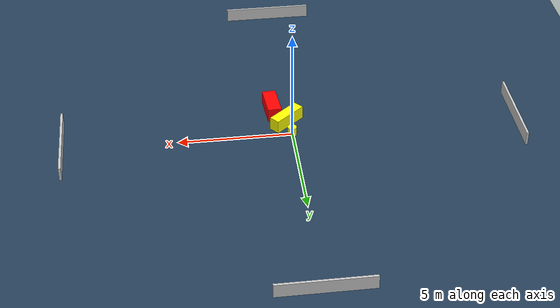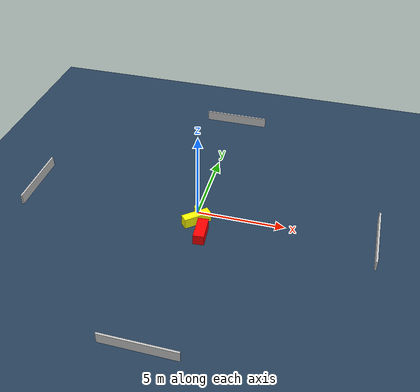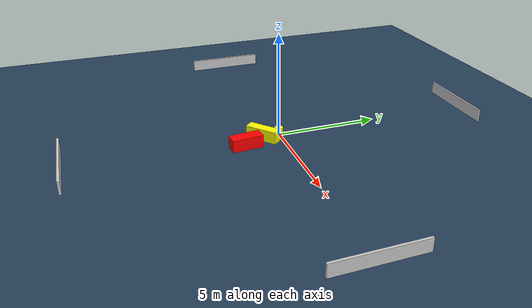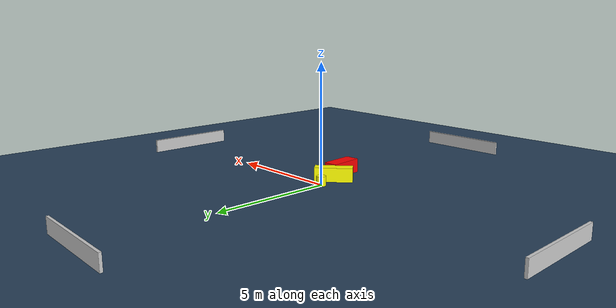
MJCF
<?xml version="1.0" ?>
<mujoco model="generated_environment">
  <option timestep="0.01" integrator="RK4" cone="elliptic"/>
  <default>
    <geom density="1"/>
  </default>
  <asset>
    <texture builtin="gradient" height="3072" name="skybox" rgb1="0.3 0.5 0.7" rgb2="0 0 0" type="skybox" width="512"/>
    <texture builtin="checker" height="300" name="groundplane" rgb1="0.2 0.3 0.4" rgb2="0.1 0.2 0.3" type="2d" width="300"/>
    <material name="groundplane" reflectance="0.2" texrepeat="5 5" texture="groundplane"/>
  </asset>
  <worldbody>
    <light dir="0 0 -1" directional="true" pos="0 0 1.5"/>
    <geom condim="3" friction="0.5 0.005 0.001" material="groundplane" name="floor" pos="0 0 0" size="0 0 0.05" type="plane"/>
    <body name="walls">
      <geom name="wall_1" condim="4" pos="-10.0 0.0 0.3" rgba="0.800000011920929 0.800000011920929 0.800000011920929 1.0" size="0.05 2.0 0.3" type="box"/>
      <geom name="wall_2" condim="4" pos="10.0 0.0 0.3" rgba="0.800000011920929 0.800000011920929 0.800000011920929 1.0" size="0.05 2.0 0.3" type="box"/>
      <geom name="wall_3" condim="4" pos="0.0 -10.0 0.3" rgba="0.800000011920929 0.800000011920929 0.800000011920929 1.0" size="2.0 0.05 0.3" type="box"/>
      <geom name="wall_4" condim="4" pos="0.0 10.0 0.3" rgba="0.800000011920929 0.800000011920929 0.800000011920929 1.0" size="2.0 0.05 0.3" type="box"/>
    </body>
    <body name="robot">
      <joint name="joint_x" type="slide" pos="0 0 0" axis="1 0 0"/>
      <joint name="joint_y" type="slide" pos="0 0 0" axis="0 1 0"/>
      <geom name="robot" type="cylinder" pos="0.0 0.0 0.2" size="0.2 0.2 0.0" mass="5.0" friction="1.0 0.005 0.0001" condim="4" rgba="1.0 1.0 0.0 1.0"/>
    </body>
    <body name="obstacle_1_movable">
      <geom name="obstacle_1_movable" condim="4" pos="0.14797399921304785 -0.8520834193613146 0.3" euler="0 0 130.6034251297683" friction="0.0 0.005 0.001" rgba="1.0 1.0 0.0 1.0" size="0.24127845907100692 0.7984895811562587 0.3" type="box" mass="0.1"/>
      <joint type="free"/>
    </body>
    <body name="obstacle_2_static">
      <geom name="obstacle_2_static" condim="4" pos="0.6910648665092055 -1.8543179051211927 0.3" euler="0 0 4.411725608980102" friction="0.0 0.005 0.001" rgba="1.0 0.0 0.0 1.0" size="0.30297264824292774 0.7415991041578385 0.3" type="box"/>
    </body>
  </worldbody>
  <actuator>
    <motor name="actuator_x" joint="joint_x" gear="1" ctrlrange="-1 1"/>
    <motor name="actuator_y" joint="joint_y" gear="1" ctrlrange="-1 1"/>
  </actuator>
</mujoco>
